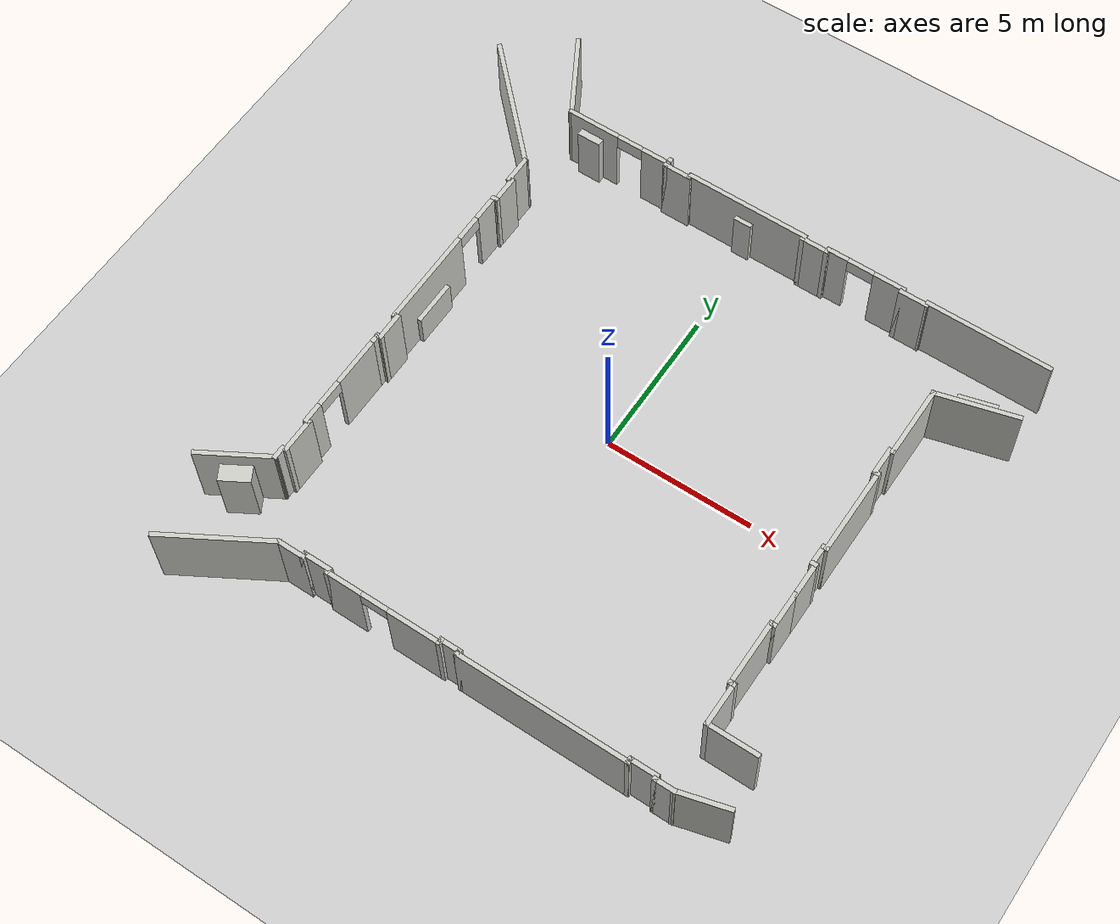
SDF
<sdf version="1.6">
 <world name="default">
  <model name="ground_plane">
   <static>1</static>
   <link name="link">
    <collision name="collision">
     <geometry><plane><normal>0 0 1</normal><size>100 100</size></plane></geometry>
     <surface><friction><ode><mu>100</mu><mu2>50</mu2></ode></friction></surface>
    </collision>
    <visual name="visual">
     <cast_shadows>0</cast_shadows>
     <geometry><plane><normal>0 0 1</normal><size>100 100</size></plane></geometry>
     <material>
      <script><uri>file://media/materials/scripts/gazebo.material</uri><name>Gazebo/Grey</name></script>
     </material>
    </visual>
   </link>
  </model>
  <model name="mcbryde5">
   <pose>0.0004 -0.03414 0 0 -0 0</pose>
   <link name="Wall_102">
    <collision name="Wall_102_Collision">
     <geometry><box><size>0.15 0.15 2.5</size></box></geometry>
     <pose>0 0 1.25 0 -0 0</pose>
    </collision>
    <visual name="Wall_102_Visual">
     <pose>0 0 1.25 0 -0 0</pose>
     <geometry><box><size>0.15 0.15 2.5</size></box></geometry>
     <material>
      <script><uri>file://media/materials/scripts/gazebo.material</uri><name>Gazebo/CeilingTiled</name></script>
      <ambient>1 1 1 1</ambient>
     </material>
    </visual>
    <pose>-6.94903 4.93922 0 0 -0 0</pose>
   </link>
   <link name="Wall_103">
    <collision name="Wall_103_Collision">
     <geometry><box><size>0.25 0.15 2.5</size></box></geometry>
     <pose>0 0 1.25 0 -0 0</pose>
    </collision>
    <visual name="Wall_103_Visual">
     <pose>0 0 1.25 0 -0 0</pose>
     <geometry><box><size>0.25 0.15 2.5</size></box></geometry>
     <material>
      <script><uri>file://media/materials/scripts/gazebo.material</uri><name>Gazebo/CeilingTiled</name></script>
      <ambient>1 1 1 1</ambient>
     </material>
    </visual>
    <pose>-6.89903 4.93922 0 0 -0 0</pose>
   </link>
   <link name="Wall_104">
    <collision name="Wall_104_Collision">
     <geometry><box><size>1 0.15 2.5</size></box></geometry>
     <pose>0 0 1.25 0 -0 0</pose>
    </collision>
    <visual name="Wall_104_Visual">
     <pose>0 0 1.25 0 -0 0</pose>
     <geometry><box><size>1 0.15 2.5</size></box></geometry>
     <material>
      <script><uri>file://media/materials/scripts/gazebo.material</uri><name>Gazebo/CeilingTiled</name></script>
      <ambient>1 1 1 1</ambient>
     </material>
    </visual>
    <pose>-6.84903 4.51422 0 0 0 -1.5708</pose>
   </link>
   <link name="Wall_105">
    <collision name="Wall_105_Collision">
     <geometry><box><size>0.25 0.15 2.5</size></box></geometry>
     <pose>0 0 1.25 0 -0 0</pose>
    </collision>
    <visual name="Wall_105_Visual">
     <pose>0 0 1.25 0 -0 0</pose>
     <geometry><box><size>0.25 0.15 2.5</size></box></geometry>
     <material>
      <script><uri>file://media/materials/scripts/gazebo.material</uri><name>Gazebo/CeilingTiled</name></script>
      <ambient>1 1 1 1</ambient>
     </material>
    </visual>
    <pose>-6.89903 4.08922 0 0 -0 3.14159</pose>
   </link>
   <link name="Wall_106">
    <pose>-6.94903 1.53922 0 0 0 -1.5708</pose>
    <visual name="Wall_106_Visual_0">
     <pose>-2.13764 0 1.25 0 -0 0</pose>
     <geometry><box><size>0.974722 0.15 2.5</size></box></geometry>
     <material>
      <script><uri>file://media/materials/scripts/gazebo.material</uri><name>Gazebo/CeilingTiled</name></script>
      <ambient>1 1 1 1</ambient>
     </material>
    </visual>
    <collision name="Wall_106_Collision_0">
     <geometry><box><size>0.974722 0.15 2.5</size></box></geometry>
     <pose>-2.13764 0 1.25 0 -0 0</pose>
    </collision>
    <visual name="Wall_106_Visual_1">
     <pose>0.937361 0 1.25 0 -0 0</pose>
     <geometry><box><size>3.37528 0.15 2.5</size></box></geometry>
     <material>
      <script><uri>file://media/materials/scripts/gazebo.material</uri><name>Gazebo/CeilingTiled</name></script>
      <ambient>1 1 1 1</ambient>
     </material>
    </visual>
    <collision name="Wall_106_Collision_1">
     <geometry><box><size>3.37528 0.15 2.5</size></box></geometry>
     <pose>0.937361 0 1.25 0 -0 0</pose>
    </collision>
    <visual name="Wall_106_Visual_2">
     <pose>-1.20028 0 2.25 0 -0 0</pose>
     <geometry><box><size>0.9 0.15 0.5</size></box></geometry>
     <material>
      <script><uri>file://media/materials/scripts/gazebo.material</uri><name>Gazebo/CeilingTiled</name></script>
      <ambient>1 1 1 1</ambient>
     </material>
    </visual>
    <collision name="Wall_106_Collision_2">
     <geometry><box><size>0.9 0.15 0.5</size></box></geometry>
     <pose>-1.20028 0 2.25 0 -0 0</pose>
    </collision>
    <visual name="Wall_106_Visual_3">
     <pose>0.937361 0.15 0.6 0 -0 0</pose>
     <geometry><box><size>1.5 0.15 1.2</size></box></geometry>
     <material>
      <script><uri>file://media/materials/scripts/gazebo.material</uri><name>Gazebo/CeilingTiled</name></script>
      <ambient>0.6 0.6 1 1</ambient>
     </material>
    </visual>
    <collision name="Wall_106_Collision_3">
     <geometry><box><size>1.5 0.15 1.2</size></box></geometry>
     <pose>0.937361 0.15 0.6 0 -0 0</pose>
    </collision>
   </link>
   <link name="Wall_107">
    <collision name="Wall_107_Collision">
     <geometry><box><size>0.25 0.15 2.5</size></box></geometry>
     <pose>0 0 1.25 0 -0 0</pose>
    </collision>
    <visual name="Wall_107_Visual">
     <pose>0 0 1.25 0 -0 0</pose>
     <geometry><box><size>0.25 0.15 2.5</size></box></geometry>
     <material>
      <script><uri>file://media/materials/scripts/gazebo.material</uri><name>Gazebo/CeilingTiled</name></script>
      <ambient>1 1 1 1</ambient>
     </material>
    </visual>
    <pose>-6.89903 -1.01078 0 0 -0 0</pose>
   </link>
   <link name="Wall_108">
    <collision name="Wall_108_Collision">
     <geometry><box><size>1 0.15 2.5</size></box></geometry>
     <pose>0 0 1.25 0 -0 0</pose>
    </collision>
    <visual name="Wall_108_Visual">
     <pose>0 0 1.25 0 -0 0</pose>
     <geometry><box><size>1 0.15 2.5</size></box></geometry>
     <material>
      <script><uri>file://media/materials/scripts/gazebo.material</uri><name>Gazebo/CeilingTiled</name></script>
      <ambient>1 1 1 1</ambient>
     </material>
    </visual>
    <pose>-6.84903 -1.43578 0 0 0 -1.5708</pose>
   </link>
   <link name="Wall_109">
    <collision name="Wall_109_Collision">
     <geometry><box><size>0.25 0.15 2.5</size></box></geometry>
     <pose>0 0 1.25 0 -0 0</pose>
    </collision>
    <visual name="Wall_109_Visual">
     <pose>0 0 1.25 0 -0 0</pose>
     <geometry><box><size>0.25 0.15 2.5</size></box></geometry>
     <material>
      <script><uri>file://media/materials/scripts/gazebo.material</uri><name>Gazebo/CeilingTiled</name></script>
      <ambient>1 1 1 1</ambient>
     </material>
    </visual>
    <pose>-6.89903 -1.86078 0 0 -0 3.14159</pose>
   </link>
   <link name="Wall_110">
    <collision name="Wall_110_Collision">
     <geometry><box><size>0.5 0.15 2.5</size></box></geometry>
     <pose>0 0 1.25 0 -0 0</pose>
    </collision>
    <visual name="Wall_110_Visual">
     <pose>0 0 1.25 0 -0 0</pose>
     <geometry><box><size>0.5 0.15 2.5</size></box></geometry>
     <material>
      <script><uri>file://media/materials/scripts/gazebo.material</uri><name>Gazebo/CeilingTiled</name></script>
      <ambient>1 1 1 1</ambient>
     </material>
    </visual>
    <pose>-6.94903 -2.03578 0 0 0 -1.5708</pose>
   </link>
   <link name="Wall_112">
    <pose>-6.94903 -3.76078 0 0 0 -1.5708</pose>
    <visual name="Wall_112_Visual_0">
     <pose>-0.803013 0 1.25 0 -0 0</pose>
     <geometry><box><size>1.64397 0.15 2.5</size></box></geometry>
     <material>
      <script><uri>file://media/materials/scripts/gazebo.material</uri><name>Gazebo/CeilingTiled</name></script>
      <ambient>1 1 1 1</ambient>
     </material>
    </visual>
    <collision name="Wall_112_Collision_0">
     <geometry><box><size>1.64397 0.15 2.5</size></box></geometry>
     <pose>-0.803013 0 1.25 0 -0 0</pose>
    </collision>
    <visual name="Wall_112_Visual_1">
     <pose>1.27199 0 1.25 0 -0 0</pose>
     <geometry><box><size>0.706025 0.15 2.5</size></box></geometry>
     <material>
      <script><uri>file://media/materials/scripts/gazebo.material</uri><name>Gazebo/CeilingTiled</name></script>
      <ambient>1 1 1 1</ambient>
     </material>
    </visual>
    <collision name="Wall_112_Collision_1">
     <geometry><box><size>0.706025 0.15 2.5</size></box></geometry>
     <pose>1.27199 0 1.25 0 -0 0</pose>
    </collision>
    <visual name="Wall_112_Visual_2">
     <pose>0.468975 0 2.25 0 -0 0</pose>
     <geometry><box><size>0.9 0.15 0.5</size></box></geometry>
     <material>
      <script><uri>file://media/materials/scripts/gazebo.material</uri><name>Gazebo/CeilingTiled</name></script>
      <ambient>1 1 1 1</ambient>
     </material>
    </visual>
    <collision name="Wall_112_Collision_2">
     <geometry><box><size>0.9 0.15 0.5</size></box></geometry>
     <pose>0.468975 0 2.25 0 -0 0</pose>
    </collision>
   </link>
   <link name="Wall_113">
    <collision name="Wall_113_Collision">
     <geometry><box><size>0.25 0.15 2.5</size></box></geometry>
     <pose>0 0 1.25 0 -0 0</pose>
    </collision>
    <visual name="Wall_113_Visual">
     <pose>0 0 1.25 0 -0 0</pose>
     <geometry><box><size>0.25 0.15 2.5</size></box></geometry>
     <material>
      <script><uri>file://media/materials/scripts/gazebo.material</uri><name>Gazebo/CeilingTiled</name></script>
      <ambient>1 1 1 1</ambient>
     </material>
    </visual>
    <pose>-6.89903 -5.31078 0 0 -0 0</pose>
   </link>
   <link name="Wall_114">
    <collision name="Wall_114_Collision">
     <geometry><box><size>1.25 0.15 2.5</size></box></geometry>
     <pose>0 0 1.25 0 -0 0</pose>
    </collision>
    <visual name="Wall_114_Visual">
     <pose>0 0 1.25 0 -0 0</pose>
     <geometry><box><size>1.25 0.15 2.5</size></box></geometry>
     <material>
      <script><uri>file://media/materials/scripts/gazebo.material</uri><name>Gazebo/CeilingTiled</name></script>
      <ambient>1 1 1 1</ambient>
     </material>
    </visual>
    <pose>-6.84903 -5.86078 0 0 0 -1.5708</pose>
   </link>
   <link name="Wall_115">
    <collision name="Wall_115_Collision">
     <geometry><box><size>0.25 0.15 2.5</size></box></geometry>
     <pose>0 0 1.25 0 -0 0</pose>
    </collision>
    <visual name="Wall_115_Visual">
     <pose>0 0 1.25 0 -0 0</pose>
     <geometry><box><size>0.25 0.15 2.5</size></box></geometry>
     <material>
      <script><uri>file://media/materials/scripts/gazebo.material</uri><name>Gazebo/CeilingTiled</name></script>
      <ambient>1 1 1 1</ambient>
     </material>
    </visual>
    <pose>-6.89903 -6.41078 0 0 -0 3.14159</pose>
   </link>
   <link name="Wall_116">
    <collision name="Wall_116_Collision">
     <geometry><box><size>0.5 0.15 2.5</size></box></geometry>
     <pose>0 0 1.25 0 -0 0</pose>
    </collision>
    <visual name="Wall_116_Visual">
     <pose>0 0 1.25 0 -0 0</pose>
     <geometry><box><size>0.5 0.15 2.5</size></box></geometry>
     <material>
      <script><uri>file://media/materials/scripts/gazebo.material</uri><name>Gazebo/CeilingTiled</name></script>
      <ambient>1 1 1 1</ambient>
     </material>
    </visual>
    <pose>-6.94903 -6.58578 0 0 0 -1.5708</pose>
   </link>
   <link name="Wall_117">
    <collision name="Wall_117_Collision_0">
     <geometry><box><size>2.5 0.15 2.5</size></box></geometry>
     <pose>0 0 1.25 0 -0 0</pose>
    </collision>
    <visual name="Wall_117_Visual_0">
     <pose>0 0 1.25 0 -0 0</pose>
     <geometry><box><size>2.5 0.15 2.5</size></box></geometry>
     <material>
      <script><uri>file://media/materials/scripts/gazebo.material</uri><name>Gazebo/CeilingTiled</name></script>
      <ambient>1 1 1 1</ambient>
     </material>
    </visual>
    <collision name="Wall_117_Collision_1">
     <geometry><box><size>1 0.55 2</size></box></geometry>
     <pose>0 0.35 1 0 -0 0</pose>
    </collision>
    <visual name="Wall_117_Visual_1">
     <pose>0 0.35 1 0 -0 0</pose>
     <geometry><box><size>1 0.55 2</size></box></geometry>
     <material>
      <script><uri>file://media/materials/scripts/gazebo.material</uri><name>Gazebo/CeilingTiled</name></script>
      <ambient>0.3 1 0.3 1</ambient>
     </material>
    </visual>
    <pose>-7.96661 -7.34828 0 0 0 -2.61799</pose>
   </link>
   <link name="Wall_119">
    <collision name="Wall_119_Collision">
     <geometry><box><size>3.75 0.15 2.5</size></box></geometry>
     <pose>0 0 1.25 0 -0 0</pose>
    </collision>
    <visual name="Wall_119_Visual">
     <pose>0 0 1.25 0 -0 0</pose>
     <geometry><box><size>3.75 0.15 2.5</size></box></geometry>
     <material>
      <script><uri>file://media/materials/scripts/gazebo.material</uri><name>Gazebo/CeilingTiled</name></script>
      <ambient>1 1 1 1</ambient>
     </material>
    </visual>
    <pose>-6.76357 -9.73795 0 0 -0 0.523599</pose>
   </link>
   <link name="Wall_120">
    <collision name="Wall_120_Collision">
     <geometry><box><size>1 0.15 2.5</size></box></geometry>
     <pose>0 0 1.25 0 -0 0</pose>
    </collision>
    <visual name="Wall_120_Visual">
     <pose>0 0 1.25 0 -0 0</pose>
     <geometry><box><size>1 0.15 2.5</size></box></geometry>
     <material>
      <script><uri>file://media/materials/scripts/gazebo.material</uri><name>Gazebo/CeilingTiled</name></script>
      <ambient>1 1 1 1</ambient>
     </material>
    </visual>
    <pose>-4.77972 -8.83795 0 0 -0 0</pose>
   </link>
   <link name="Wall_121">
    <collision name="Wall_121_Collision">
     <geometry><box><size>0.25 0.15 2.5</size></box></geometry>
     <pose>0 0 1.25 0 -0 0</pose>
    </collision>
    <visual name="Wall_121_Visual">
     <pose>0 0 1.25 0 -0 0</pose>
     <geometry><box><size>0.25 0.15 2.5</size></box></geometry>
     <material>
      <script><uri>file://media/materials/scripts/gazebo.material</uri><name>Gazebo/CeilingTiled</name></script>
      <ambient>1 1 1 1</ambient>
     </material>
    </visual>
    <pose>-4.35472 -8.78795 0 0 -0 1.5708</pose>
   </link>
   <link name="Wall_122">
    <collision name="Wall_122_Collision">
     <geometry><box><size>1 0.15 2.5</size></box></geometry>
     <pose>0 0 1.25 0 -0 0</pose>
    </collision>
    <visual name="Wall_122_Visual">
     <pose>0 0 1.25 0 -0 0</pose>
     <geometry><box><size>1 0.15 2.5</size></box></geometry>
     <material>
      <script><uri>file://media/materials/scripts/gazebo.material</uri><name>Gazebo/CeilingTiled</name></script>
      <ambient>1 1 1 1</ambient>
     </material>
    </visual>
    <pose>-3.92972 -8.73795 0 0 -0 0</pose>
   </link>
   <link name="Wall_123">
    <collision name="Wall_123_Collision">
     <geometry><box><size>0.25 0.15 2.5</size></box></geometry>
     <pose>0 0 1.25 0 -0 0</pose>
    </collision>
    <visual name="Wall_123_Visual">
     <pose>0 0 1.25 0 -0 0</pose>
     <geometry><box><size>0.25 0.15 2.5</size></box></geometry>
     <material>
      <script><uri>file://media/materials/scripts/gazebo.material</uri><name>Gazebo/CeilingTiled</name></script>
      <ambient>1 1 1 1</ambient>
     </material>
    </visual>
    <pose>-3.50472 -8.78795 0 0 0 -1.5708</pose>
   </link>
   <link name="Wall_124">
    <pose>-1.57972 -8.83795 0 0 -0 0</pose>
    <visual name="Wall_124_Visual_0">
     <pose>-1.36383 0 1.25 0 -0 0</pose>
     <geometry><box><size>1.27234 0.15 2.5</size></box></geometry>
     <material>
      <script><uri>file://media/materials/scripts/gazebo.material</uri><name>Gazebo/CeilingTiled</name></script>
      <ambient>1 1 1 1</ambient>
     </material>
    </visual>
    <collision name="Wall_124_Collision_0">
     <geometry><box><size>1.27234 0.15 2.5</size></box></geometry>
     <pose>-1.36383 0 1.25 0 -0 0</pose>
    </collision>
    <visual name="Wall_124_Visual_1">
     <pose>1.08617 0 1.25 0 -0 0</pose>
     <geometry><box><size>1.82766 0.15 2.5</size></box></geometry>
     <material>
      <script><uri>file://media/materials/scripts/gazebo.material</uri><name>Gazebo/CeilingTiled</name></script>
      <ambient>1 1 1 1</ambient>
     </material>
    </visual>
    <collision name="Wall_124_Collision_1">
     <geometry><box><size>1.82766 0.15 2.5</size></box></geometry>
     <pose>1.08617 0 1.25 0 -0 0</pose>
    </collision>
    <visual name="Wall_124_Visual_2">
     <pose>-0.277656 0 2.25 0 -0 0</pose>
     <geometry><box><size>0.9 0.15 0.5</size></box></geometry>
     <material>
      <script><uri>file://media/materials/scripts/gazebo.material</uri><name>Gazebo/CeilingTiled</name></script>
      <ambient>1 1 1 1</ambient>
     </material>
    </visual>
    <collision name="Wall_124_Collision_2">
     <geometry><box><size>0.9 0.15 0.5</size></box></geometry>
     <pose>-0.277656 0 2.25 0 -0 0</pose>
    </collision>
   </link>
   <link name="Wall_125">
    <collision name="Wall_125_Collision">
     <geometry><box><size>0.25 0.15 2.5</size></box></geometry>
     <pose>0 0 1.25 0 -0 0</pose>
    </collision>
    <visual name="Wall_125_Visual">
     <pose>0 0 1.25 0 -0 0</pose>
     <geometry><box><size>0.25 0.15 2.5</size></box></geometry>
     <material>
      <script><uri>file://media/materials/scripts/gazebo.material</uri><name>Gazebo/CeilingTiled</name></script>
      <ambient>1 1 1 1</ambient>
     </material>
    </visual>
    <pose>0.345276 -8.78795 0 0 -0 1.5708</pose>
   </link>
   <link name="Wall_126">
    <collision name="Wall_126_Collision">
     <geometry><box><size>0.75 0.15 2.5</size></box></geometry>
     <pose>0 0 1.25 0 -0 0</pose>
    </collision>
    <visual name="Wall_126_Visual">
     <pose>0 0 1.25 0 -0 0</pose>
     <geometry><box><size>0.75 0.15 2.5</size></box></geometry>
     <material>
      <script><uri>file://media/materials/scripts/gazebo.material</uri><name>Gazebo/CeilingTiled</name></script>
      <ambient>1 1 1 1</ambient>
     </material>
    </visual>
    <pose>0.645276 -8.73795 0 0 -0 0</pose>
   </link>
   <link name="Wall_127">
    <collision name="Wall_127_Collision">
     <geometry><box><size>0.25 0.15 2.5</size></box></geometry>
     <pose>0 0 1.25 0 -0 0</pose>
    </collision>
    <visual name="Wall_127_Visual">
     <pose>0 0 1.25 0 -0 0</pose>
     <geometry><box><size>0.25 0.15 2.5</size></box></geometry>
     <material>
      <script><uri>file://media/materials/scripts/gazebo.material</uri><name>Gazebo/CeilingTiled</name></script>
      <ambient>1 1 1 1</ambient>
     </material>
    </visual>
    <pose>0.945276 -8.78795 0 0 0 -1.5708</pose>
   </link>
   <link name="Wall_128">
    <collision name="Wall_128_Collision_0">
     <geometry><box><size>5.75 0.15 2.5</size></box></geometry>
     <pose>0 0 1.25 0 -0 0</pose>
    </collision>
    <visual name="Wall_128_Visual_0">
     <pose>0 0 1.25 0 -0 0</pose>
     <geometry><box><size>5.75 0.15 2.5</size></box></geometry>
     <material>
      <script><uri>file://media/materials/scripts/gazebo.material</uri><name>Gazebo/CeilingTiled</name></script>
      <ambient>1 1 1 1</ambient>
     </material>
    </visual>
    <collision name="Wall_128_Collision_1">
     <geometry><box><size>1.2 0.35 1</size></box></geometry>
     <pose>0 0.25 0.5 0 -0 0</pose>
    </collision>
    <visual name="Wall_128_Visual_1">
     <pose>0 0.25 0.5 0 -0 0</pose>
     <geometry><box><size>1.2 0.35 1</size></box></geometry>
     <material>
      <script><uri>file://media/materials/scripts/gazebo.material</uri><name>Gazebo/CeilingTiled</name></script>
      <ambient>0.4 0.4 1 1</ambient>
     </material>
    </visual>
    <pose>3.74528 -8.83795 0 0 -0 0</pose>
   </link>
   <link name="Wall_129">
    <collision name="Wall_129_Collision">
     <geometry><box><size>0.25 0.15 2.5</size></box></geometry>
     <pose>0 0 1.25 0 -0 0</pose>
    </collision>
    <visual name="Wall_129_Visual">
     <pose>0 0 1.25 0 -0 0</pose>
     <geometry><box><size>0.25 0.15 2.5</size></box></geometry>
     <material>
      <script><uri>file://media/materials/scripts/gazebo.material</uri><name>Gazebo/CeilingTiled</name></script>
      <ambient>1 1 1 1</ambient>
     </material>
    </visual>
    <pose>6.54528 -8.78795 0 0 -0 1.5708</pose>
   </link>
   <link name="Wall_130">
    <collision name="Wall_130_Collision">
     <geometry><box><size>1 0.15 2.5</size></box></geometry>
     <pose>0 0 1.25 0 -0 0</pose>
    </collision>
    <visual name="Wall_130_Visual">
     <pose>0 0 1.25 0 -0 0</pose>
     <geometry><box><size>1 0.15 2.5</size></box></geometry>
     <material>
      <script><uri>file://media/materials/scripts/gazebo.material</uri><name>Gazebo/CeilingTiled</name></script>
      <ambient>1 1 1 1</ambient>
     </material>
    </visual>
    <pose>6.97028 -8.73795 0 0 -0 0</pose>
   </link>
   <link name="Wall_131">
    <collision name="Wall_131_Collision">
     <geometry><box><size>0.25 0.15 2.5</size></box></geometry>
     <pose>0 0 1.25 0 -0 0</pose>
    </collision>
    <visual name="Wall_131_Visual">
     <pose>0 0 1.25 0 -0 0</pose>
     <geometry><box><size>0.25 0.15 2.5</size></box></geometry>
     <material>
      <script><uri>file://media/materials/scripts/gazebo.material</uri><name>Gazebo/CeilingTiled</name></script>
      <ambient>1 1 1 1</ambient>
     </material>
    </visual>
    <pose>7.39528 -8.78795 0 0 0 -1.5708</pose>
   </link>
   <link name="Wall_132">
    <collision name="Wall_132_Collision">
     <geometry><box><size>0.75 0.15 2.5</size></box></geometry>
     <pose>0 0 1.25 0 -0 0</pose>
    </collision>
    <visual name="Wall_132_Visual">
     <pose>0 0 1.25 0 -0 0</pose>
     <geometry><box><size>0.75 0.15 2.5</size></box></geometry>
     <material>
      <script><uri>file://media/materials/scripts/gazebo.material</uri><name>Gazebo/CeilingTiled</name></script>
      <ambient>1 1 1 1</ambient>
     </material>
    </visual>
    <pose>7.69528 -8.83795 0 0 -0 0</pose>
   </link>
   <link name="Wall_133">
    <collision name="Wall_133_Collision">
     <geometry><box><size>1.75 0.15 2.5</size></box></geometry>
     <pose>0 0 1.25 0 -0 0</pose>
    </collision>
    <visual name="Wall_133_Visual">
     <pose>0 0 1.25 0 -0 0</pose>
     <geometry><box><size>1.75 0.15 2.5</size></box></geometry>
     <material>
      <script><uri>file://media/materials/scripts/gazebo.material</uri><name>Gazebo/CeilingTiled</name></script>
      <ambient>1 1 1 1</ambient>
     </material>
    </visual>
    <pose>8.76802 -8.6309 0 0 -0 0.261799</pose>
   </link>
   <link name="Wall_136">
    <collision name="Wall_136_Collision">
     <geometry><box><size>1.75 0.15 2.5</size></box></geometry>
     <pose>0 0 1.25 0 -0 0</pose>
    </collision>
    <visual name="Wall_136_Visual">
     <pose>0 0 1.25 0 -0 0</pose>
     <geometry><box><size>1.75 0.15 2.5</size></box></geometry>
     <material>
      <script><uri>file://media/materials/scripts/gazebo.material</uri><name>Gazebo/CeilingTiled</name></script>
      <ambient>1 1 1 1</ambient>
     </material>
    </visual>
    <pose>8.50453 -6.75972 0 0 -0 3.14159</pose>
   </link>
   <link name="Wall_137">
    <collision name="Wall_137_Collision_0">
     <geometry><box><size>1.5 0.15 2.5</size></box></geometry>
     <pose>0 0 1.25 0 -0 0</pose>
    </collision>
    <visual name="Wall_137_Visual_0">
     <pose>0 0 1.25 0 -0 0</pose>
     <geometry><box><size>1.5 0.15 2.5</size></box></geometry>
     <material>
      <script><uri>file://media/materials/scripts/gazebo.material</uri><name>Gazebo/CeilingTiled</name></script>
      <ambient>1 1 1 1</ambient>
     </material>
    </visual>
    <collision name="Wall_137_Collision_1">
     <geometry><box><size>0.8 0.15 1.5</size></box></geometry>
     <pose>0 0.15 0.75 0 -0 0</pose>
    </collision>
    <visual name="Wall_137_Visual_1">
     <pose>0 0.15 0.75 0 -0 0</pose>
     <geometry><box><size>0.8 0.15 1.5</size></box></geometry>
     <material>
      <script><uri>file://media/materials/scripts/gazebo.material</uri><name>Gazebo/CeilingTiled</name></script>
      <ambient>1 0.6 1 1</ambient>
     </material>
    </visual>
    <pose>7.70453 -6.08472 0 0 -0 1.5708</pose>
   </link>
   <link name="Wall_138">
    <collision name="Wall_138_Collision">
     <geometry><box><size>0.25 0.15 2.5</size></box></geometry>
     <pose>0 0 1.25 0 -0 0</pose>
    </collision>
    <visual name="Wall_138_Visual">
     <pose>0 0 1.25 0 -0 0</pose>
     <geometry><box><size>0.25 0.15 2.5</size></box></geometry>
     <material>
      <script><uri>file://media/materials/scripts/gazebo.material</uri><name>Gazebo/CeilingTiled</name></script>
      <ambient>1 1 1 1</ambient>
     </material>
    </visual>
    <pose>7.65453 -5.40972 0 0 -0 3.14159</pose>
   </link>
   <link name="Wall_139">
    <collision name="Wall_139_Collision">
     <geometry><box><size>2.25 0.15 2.5</size></box></geometry>
     <pose>0 0 1.25 0 -0 0</pose>
    </collision>
    <visual name="Wall_139_Visual">
     <pose>0 0 1.25 0 -0 0</pose>
     <geometry><box><size>2.25 0.15 2.5</size></box></geometry>
     <material>
      <script><uri>file://media/materials/scripts/gazebo.material</uri><name>Gazebo/CeilingTiled</name></script>
      <ambient>1 1 1 1</ambient>
     </material>
    </visual>
    <pose>7.60453 -4.35972 0 0 -0 1.5708</pose>
   </link>
   <link name="Wall_14">
    <collision name="Wall_14_Collision">
     <geometry><box><size>0.15 0.15 2.5</size></box></geometry>
     <pose>0 0 1.25 0 -0 0</pose>
    </collision>
    <visual name="Wall_14_Visual">
     <pose>0 0 1.25 0 -0 0</pose>
     <geometry><box><size>0.15 0.15 2.5</size></box></geometry>
     <material>
      <script><uri>file://media/materials/scripts/gazebo.material</uri><name>Gazebo/CeilingTiled</name></script>
      <ambient>1 1 1 1</ambient>
     </material>
    </visual>
    <pose>-3.20531 8.30498 0 0 -0 0</pose>
   </link>
   <link name="Wall_140">
    <collision name="Wall_140_Collision">
     <geometry><box><size>0.25 0.15 2.5</size></box></geometry>
     <pose>0 0 1.25 0 -0 0</pose>
    </collision>
    <visual name="Wall_140_Visual">
     <pose>0 0 1.25 0 -0 0</pose>
     <geometry><box><size>0.25 0.15 2.5</size></box></geometry>
     <material>
      <script><uri>file://media/materials/scripts/gazebo.material</uri><name>Gazebo/CeilingTiled</name></script>
      <ambient>1 1 1 1</ambient>
     </material>
    </visual>
    <pose>7.65453 -3.30972 0 0 -0 0</pose>
   </link>
   <link name="Wall_141">
    <collision name="Wall_141_Collision">
     <geometry><box><size>1.25 0.15 2.5</size></box></geometry>
     <pose>0 0 1.25 0 -0 0</pose>
    </collision>
    <visual name="Wall_141_Visual">
     <pose>0 0 1.25 0 -0 0</pose>
     <geometry><box><size>1.25 0.15 2.5</size></box></geometry>
     <material>
      <script><uri>file://media/materials/scripts/gazebo.material</uri><name>Gazebo/CeilingTiled</name></script>
      <ambient>1 1 1 1</ambient>
     </material>
    </visual>
    <pose>7.70453 -2.75972 0 0 -0 1.5708</pose>
   </link>
   <link name="Wall_143">
    <collision name="Wall_143_Collision">
     <geometry><box><size>1.25 0.15 2.5</size></box></geometry>
     <pose>0 0 1.25 0 -0 0</pose>
    </collision>
    <visual name="Wall_143_Visual">
     <pose>0 0 1.25 0 -0 0</pose>
     <geometry><box><size>1.25 0.15 2.5</size></box></geometry>
     <material>
      <script><uri>file://media/materials/scripts/gazebo.material</uri><name>Gazebo/CeilingTiled</name></script>
      <ambient>1 1 1 1</ambient>
     </material>
    </visual>
    <pose>7.70453 -1.65972 0 0 -0 1.5708</pose>
   </link>
   <link name="Wall_144">
    <collision name="Wall_144_Collision">
     <geometry><box><size>0.25 0.15 2.5</size></box></geometry>
     <pose>0 0 1.25 0 -0 0</pose>
    </collision>
    <visual name="Wall_144_Visual">
     <pose>0 0 1.25 0 -0 0</pose>
     <geometry><box><size>0.25 0.15 2.5</size></box></geometry>
     <material>
      <script><uri>file://media/materials/scripts/gazebo.material</uri><name>Gazebo/CeilingTiled</name></script>
      <ambient>1 1 1 1</ambient>
     </material>
    </visual>
    <pose>7.65453 -1.10972 0 0 -0 3.14159</pose>
   </link>
   <link name="Wall_145">
    <collision name="Wall_145_Collision">
     <geometry><box><size>0.75 0.15 2.5</size></box></geometry>
     <pose>0 0 1.25 0 -0 0</pose>
    </collision>
    <visual name="Wall_145_Visual">
     <pose>0 0 1.25 0 -0 0</pose>
     <geometry><box><size>0.75 0.15 2.5</size></box></geometry>
     <material>
      <script><uri>file://media/materials/scripts/gazebo.material</uri><name>Gazebo/CeilingTiled</name></script>
      <ambient>1 1 1 1</ambient>
     </material>
    </visual>
    <pose>7.60453 -0.809722 0 0 -0 1.5708</pose>
   </link>
   <link name="Wall_146">
    <collision name="Wall_146_Collision">
     <geometry><box><size>0.25 0.15 2.5</size></box></geometry>
     <pose>0 0 1.25 0 -0 0</pose>
    </collision>
    <visual name="Wall_146_Visual">
     <pose>0 0 1.25 0 -0 0</pose>
     <geometry><box><size>0.25 0.15 2.5</size></box></geometry>
     <material>
      <script><uri>file://media/materials/scripts/gazebo.material</uri><name>Gazebo/CeilingTiled</name></script>
      <ambient>1 1 1 1</ambient>
     </material>
    </visual>
    <pose>7.65453 -0.509722 0 0 -0 0</pose>
   </link>
   <link name="Wall_147">
    <collision name="Wall_147_Collision">
     <geometry><box><size>3 0.15 2.5</size></box></geometry>
     <pose>0 0 1.25 0 -0 0</pose>
    </collision>
    <visual name="Wall_147_Visual">
     <pose>0 0 1.25 0 -0 0</pose>
     <geometry><box><size>3 0.15 2.5</size></box></geometry>
     <material>
      <script><uri>file://media/materials/scripts/gazebo.material</uri><name>Gazebo/CeilingTiled</name></script>
      <ambient>1 1 1 1</ambient>
     </material>
    </visual>
    <pose>7.70453 0.915278 0 0 -0 1.5708</pose>
   </link>
   <link name="Wall_149">
    <collision name="Wall_149_Collision">
     <geometry><box><size>0.25 0.15 2.5</size></box></geometry>
     <pose>0 0 1.25 0 -0 0</pose>
    </collision>
    <visual name="Wall_149_Visual">
     <pose>0 0 1.25 0 -0 0</pose>
     <geometry><box><size>0.25 0.15 2.5</size></box></geometry>
     <material>
      <script><uri>file://media/materials/scripts/gazebo.material</uri><name>Gazebo/CeilingTiled</name></script>
      <ambient>1 1 1 1</ambient>
     </material>
    </visual>
    <pose>7.65453 2.34028 0 0 -0 3.14159</pose>
   </link>
   <link name="Wall_150">
    <collision name="Wall_150_Collision">
     <geometry><box><size>1 0.15 2.5</size></box></geometry>
     <pose>0 0 1.25 0 -0 0</pose>
    </collision>
    <visual name="Wall_150_Visual">
     <pose>0 0 1.25 0 -0 0</pose>
     <geometry><box><size>1 0.15 2.5</size></box></geometry>
     <material>
      <script><uri>file://media/materials/scripts/gazebo.material</uri><name>Gazebo/CeilingTiled</name></script>
      <ambient>1 1 1 1</ambient>
     </material>
    </visual>
    <pose>7.60453 2.76528 0 0 -0 1.5708</pose>
   </link>
   <link name="Wall_151">
    <collision name="Wall_151_Collision">
     <geometry><box><size>0.25 0.15 2.5</size></box></geometry>
     <pose>0 0 1.25 0 -0 0</pose>
    </collision>
    <visual name="Wall_151_Visual">
     <pose>0 0 1.25 0 -0 0</pose>
     <geometry><box><size>0.25 0.15 2.5</size></box></geometry>
     <material>
      <script><uri>file://media/materials/scripts/gazebo.material</uri><name>Gazebo/CeilingTiled</name></script>
      <ambient>1 1 1 1</ambient>
     </material>
    </visual>
    <pose>7.65453 3.19028 0 0 -0 0</pose>
   </link>
   <link name="Wall_152">
    <collision name="Wall_152_Collision">
     <geometry><box><size>2.5 0.15 2.5</size></box></geometry>
     <pose>0 0 1.25 0 -0 0</pose>
    </collision>
    <visual name="Wall_152_Visual">
     <pose>0 0 1.25 0 -0 0</pose>
     <geometry><box><size>2.5 0.15 2.5</size></box></geometry>
     <material>
      <script><uri>file://media/materials/scripts/gazebo.material</uri><name>Gazebo/CeilingTiled</name></script>
      <ambient>1 1 1 1</ambient>
     </material>
    </visual>
    <pose>7.70453 4.36528 0 0 -0 1.5708</pose>
   </link>
   <link name="Wall_153">
    <collision name="Wall_153_Collision_0">
     <geometry><box><size>2.75 0.15 2.5</size></box></geometry>
     <pose>0 0 1.25 0 -0 0</pose>
    </collision>
    <visual name="Wall_153_Visual_0">
     <pose>0 0 1.25 0 -0 0</pose>
     <geometry><box><size>2.75 0.15 2.5</size></box></geometry>
     <material>
      <script><uri>file://media/materials/scripts/gazebo.material</uri><name>Gazebo/CeilingTiled</name></script>
      <ambient>1 1 1 1</ambient>
     </material>
    </visual>
    <collision name="Wall_153_Collision_1">
     <geometry><box><size>1.25 0.55 1.8</size></box></geometry>
     <pose>0 0.35 0.9 0 -0 0</pose>
    </collision>
    <visual name="Wall_153_Visual_1">
     <pose>0 0.35 0.9 0 -0 0</pose>
     <geometry><box><size>1.25 0.55 1.8</size></box></geometry>
     <material>
      <script><uri>file://media/materials/scripts/gazebo.material</uri><name>Gazebo/CeilingTiled</name></script>
      <ambient>1 0.4 0.4 1</ambient>
     </material>
    </visual>
    <pose>8.96023 5.87674 0 0 -0 0.261799</pose>
   </link>
   <link name="Wall_19">
    <collision name="Wall_19_Collision">
     <geometry><box><size>3 0.15 2.5</size></box></geometry>
     <pose>0 0 1.25 0 -0 0</pose>
    </collision>
    <visual name="Wall_19_Visual">
     <pose>0 0 1.25 0 -0 0</pose>
     <geometry><box><size>3 0.15 2.5</size></box></geometry>
     <material>
      <script><uri>file://media/materials/scripts/gazebo.material</uri><name>Gazebo/CeilingTiled</name></script>
      <ambient>1 1 1 1</ambient>
     </material>
    </visual>
    <pose>-7.52502 9.40387 0 0 0 -1.0472</pose>
   </link>
   <link name="Wall_20">
    <pose>-5.01252 8.16978 0 0 -0 0</pose>
    <visual name="Wall_20_Visual_0">
     <pose>-0.956139 0 1.25 0 -0 0</pose>
     <geometry><box><size>1.83772 0.15 2.5</size></box></geometry>
     <material>
      <script><uri>file://media/materials/scripts/gazebo.material</uri><name>Gazebo/CeilingTiled</name></script>
      <ambient>1 1 1 1</ambient>
     </material>
    </visual>
    <collision name="Wall_20_Collision_0">
     <geometry><box><size>1.83772 0.15 2.5</size></box></geometry>
     <pose>-0.956139 0 1.25 0 -0 0</pose>
    </collision>
    <visual name="Wall_20_Visual_1">
     <pose>1.36886 0 1.25 0 -0 0</pose>
     <geometry><box><size>1.01228 0.15 2.5</size></box></geometry>
     <material>
      <script><uri>file://media/materials/scripts/gazebo.material</uri><name>Gazebo/CeilingTiled</name></script>
      <ambient>1 1 1 1</ambient>
     </material>
    </visual>
    <collision name="Wall_20_Collision_1">
     <geometry><box><size>1.01228 0.15 2.5</size></box></geometry>
     <pose>1.36886 0 1.25 0 -0 0</pose>
    </collision>
    <visual name="Wall_20_Visual_2">
     <pose>0.412722 0 2.25 0 -0 0</pose>
     <geometry><box><size>0.9 0.15 0.5</size></box></geometry>
     <material>
      <script><uri>file://media/materials/scripts/gazebo.material</uri><name>Gazebo/CeilingTiled</name></script>
      <ambient>1 1 1 1</ambient>
     </material>
    </visual>
    <collision name="Wall_20_Collision_2">
     <geometry><box><size>0.9 0.15 0.5</size></box></geometry>
     <pose>0.412722 0 2.25 0 -0 0</pose>
    </collision>
    <visual name="Wall_20_Visual_3">
     <pose>-0.956139 -0.2 1 0 -0 0</pose>
     <geometry><box><size>0.8 0.25 2</size></box></geometry>
     <material>
      <script><uri>file://media/materials/scripts/gazebo.material</uri><name>Gazebo/CeilingTiled</name></script>
      <ambient>1 1 0.2 1</ambient>
     </material>
    </visual>
    <collision name="Wall_20_Collision_3">
     <geometry><box><size>0.8 0.25 2</size></box></geometry>
     <pose>-0.956139 -0.2 1 0 -0 0</pose>
    </collision>
   </link>
   <link name="Wall_21">
    <collision name="Wall_21_Collision">
     <geometry><box><size>0.25 0.15 2.5</size></box></geometry>
     <pose>0 0 1.25 0 -0 0</pose>
    </collision>
    <visual name="Wall_21_Visual">
     <pose>0 0 1.25 0 -0 0</pose>
     <geometry><box><size>0.25 0.15 2.5</size></box></geometry>
     <material>
      <script><uri>file://media/materials/scripts/gazebo.material</uri><name>Gazebo/CeilingTiled</name></script>
      <ambient>1 1 1 1</ambient>
     </material>
    </visual>
    <pose>-3.21252 8.11978 0 0 0 -1.5708</pose>
   </link>
   <link name="Wall_22">
    <collision name="Wall_22_Collision">
     <geometry><box><size>1 0.15 2.5</size></box></geometry>
     <pose>0 0 1.25 0 -0 0</pose>
    </collision>
    <visual name="Wall_22_Visual">
     <pose>0 0 1.25 0 -0 0</pose>
     <geometry><box><size>1 0.15 2.5</size></box></geometry>
     <material>
      <script><uri>file://media/materials/scripts/gazebo.material</uri><name>Gazebo/CeilingTiled</name></script>
      <ambient>1 1 1 1</ambient>
     </material>
    </visual>
    <pose>-2.78752 8.06978 0 0 -0 0</pose>
   </link>
   <link name="Wall_23">
    <collision name="Wall_23_Collision">
     <geometry><box><size>0.25 0.15 2.5</size></box></geometry>
     <pose>0 0 1.25 0 -0 0</pose>
    </collision>
    <visual name="Wall_23_Visual">
     <pose>0 0 1.25 0 -0 0</pose>
     <geometry><box><size>0.25 0.15 2.5</size></box></geometry>
     <material>
      <script><uri>file://media/materials/scripts/gazebo.material</uri><name>Gazebo/CeilingTiled</name></script>
      <ambient>1 1 1 1</ambient>
     </material>
    </visual>
    <pose>-2.36252 8.11978 0 0 -0 1.5708</pose>
   </link>
   <link name="Wall_24">
    <collision name="Wall_24_Collision_0">
     <geometry><box><size>4.25 0.15 2.5</size></box></geometry>
     <pose>0 0 1.25 0 -0 0</pose>
    </collision>
    <visual name="Wall_24_Visual_0">
     <pose>0 0 1.25 0 -0 0</pose>
     <geometry><box><size>4.25 0.15 2.5</size></box></geometry>
     <material>
      <script><uri>file://media/materials/scripts/gazebo.material</uri><name>Gazebo/CeilingTiled</name></script>
      <ambient>1 1 1 1</ambient>
     </material>
    </visual>
    <collision name="Wall_24_Collision_1">
     <geometry><box><size>0.6 0.15 1.8</size></box></geometry>
     <pose>0 -0.15 0.9 0 -0 0</pose>
    </collision>
    <visual name="Wall_24_Visual_1">
     <pose>0 -0.15 0.9 0 -0 0</pose>
     <geometry><box><size>0.6 0.15 1.8</size></box></geometry>
     <material>
      <script><uri>file://media/materials/scripts/gazebo.material</uri><name>Gazebo/CeilingTiled</name></script>
      <ambient>0.5 1 0.8 1</ambient>
     </material>
    </visual>
    <pose>-0.312519 8.16978 0 0 -0 0</pose>
   </link>
   <link name="Wall_25">
    <collision name="Wall_25_Collision">
     <geometry><box><size>0.25 0.15 2.5</size></box></geometry>
     <pose>0 0 1.25 0 -0 0</pose>
    </collision>
    <visual name="Wall_25_Visual">
     <pose>0 0 1.25 0 -0 0</pose>
     <geometry><box><size>0.25 0.15 2.5</size></box></geometry>
     <material>
      <script><uri>file://media/materials/scripts/gazebo.material</uri><name>Gazebo/CeilingTiled</name></script>
      <ambient>1 1 1 1</ambient>
     </material>
    </visual>
    <pose>1.73748 8.11978 0 0 0 -1.5708</pose>
   </link>
   <link name="Wall_26">
    <collision name="Wall_26_Collision_0">
     <geometry><box><size>1 0.15 2.5</size></box></geometry>
     <pose>0 0 1.25 0 -0 0</pose>
    </collision>
    <visual name="Wall_26_Visual_0">
     <pose>0 0 1.25 0 -0 0</pose>
     <geometry><box><size>1 0.15 2.5</size></box></geometry>
     <material>
      <script><uri>file://media/materials/scripts/gazebo.material</uri><name>Gazebo/CeilingTiled</name></script>
      <ambient>1 1 1 1</ambient>
     </material>
    </visual>
    <pose>2.16248 8.06978 0 0 -0 0</pose>
   </link>
   <link name="Wall_27">
    <collision name="Wall_27_Collision">
     <geometry><box><size>0.25 0.15 2.5</size></box></geometry>
     <pose>0 0 1.25 0 -0 0</pose>
    </collision>
    <visual name="Wall_27_Visual">
     <pose>0 0 1.25 0 -0 0</pose>
     <geometry><box><size>0.25 0.15 2.5</size></box></geometry>
     <material>
      <script><uri>file://media/materials/scripts/gazebo.material</uri><name>Gazebo/CeilingTiled</name></script>
      <ambient>1 1 1 1</ambient>
     </material>
    </visual>
    <pose>2.58748 8.11978 0 0 -0 1.5708</pose>
   </link>
   <link name="Wall_28">
    <pose>3.88748 8.16978 0 0 -0 0</pose>
    <visual name="Wall_28_Visual_0">
     <pose>-0.988297 0 1.25 0 -0 0</pose>
     <geometry><box><size>0.773405 0.15 2.5</size></box></geometry>
     <material>
      <script><uri>file://media/materials/scripts/gazebo.material</uri><name>Gazebo/CeilingTiled</name></script>
      <ambient>1 1 1 1</ambient>
     </material>
    </visual>
    <collision name="Wall_28_Collision_0">
     <geometry><box><size>0.773405 0.15 2.5</size></box></geometry>
     <pose>-0.988297 0 1.25 0 -0 0</pose>
    </collision>
    <visual name="Wall_28_Visual_1">
     <pose>0.836703 0 1.25 0 -0 0</pose>
     <geometry><box><size>1.07659 0.15 2.5</size></box></geometry>
     <material>
      <script><uri>file://media/materials/scripts/gazebo.material</uri><name>Gazebo/CeilingTiled</name></script>
      <ambient>1 1 1 1</ambient>
     </material>
    </visual>
    <collision name="Wall_28_Collision_1">
     <geometry><box><size>1.07659 0.15 2.5</size></box></geometry>
     <pose>0.836703 0 1.25 0 -0 0</pose>
    </collision>
    <visual name="Wall_28_Visual_2">
     <pose>-0.151595 0 2.25 0 -0 0</pose>
     <geometry><box><size>0.9 0.15 0.5</size></box></geometry>
     <material>
      <script><uri>file://media/materials/scripts/gazebo.material</uri><name>Gazebo/CeilingTiled</name></script>
      <ambient>1 1 1 1</ambient>
     </material>
    </visual>
    <collision name="Wall_28_Collision_2">
     <geometry><box><size>0.9 0.15 0.5</size></box></geometry>
     <pose>-0.151595 0 2.25 0 -0 0</pose>
    </collision>
   </link>
   <link name="Wall_29">
    <collision name="Wall_29_Collision">
     <geometry><box><size>0.25 0.15 2.5</size></box></geometry>
     <pose>0 0 1.25 0 -0 0</pose>
    </collision>
    <visual name="Wall_29_Visual">
     <pose>0 0 1.25 0 -0 0</pose>
     <geometry><box><size>0.25 0.15 2.5</size></box></geometry>
     <material>
      <script><uri>file://media/materials/scripts/gazebo.material</uri><name>Gazebo/CeilingTiled</name></script>
      <ambient>1 1 1 1</ambient>
     </material>
    </visual>
    <pose>5.18748 8.11978 0 0 0 -1.5708</pose>
   </link>
   <link name="Wall_30">
    <collision name="Wall_30_Collision">
     <geometry><box><size>1 0.15 2.5</size></box></geometry>
     <pose>0 0 1.25 0 -0 0</pose>
    </collision>
    <visual name="Wall_30_Visual">
     <pose>0 0 1.25 0 -0 0</pose>
     <geometry><box><size>1 0.15 2.5</size></box></geometry>
     <material>
      <script><uri>file://media/materials/scripts/gazebo.material</uri><name>Gazebo/CeilingTiled</name></script>
      <ambient>1 1 1 1</ambient>
     </material>
    </visual>
    <pose>5.61248 8.06978 0 0 -0 0</pose>
   </link>
   <link name="Wall_31">
    <collision name="Wall_31_Collision">
     <geometry><box><size>0.227973 0.15 2.5</size></box></geometry>
     <pose>0 0 1.25 0 -0 0</pose>
    </collision>
    <visual name="Wall_31_Visual">
     <pose>0 0 1.25 0 -0 0</pose>
     <geometry><box><size>0.227973 0.15 2.5</size></box></geometry>
     <material>
      <script><uri>file://media/materials/scripts/gazebo.material</uri><name>Gazebo/CeilingTiled</name></script>
      <ambient>1 1 1 1</ambient>
     </material>
    </visual>
    <pose>6.0432 8.10835 0 0 -0 1.42361</pose>
   </link>
   <link name="Wall_32">
    <collision name="Wall_32_Collision">
     <geometry><box><size>4.25 0.15 2.5</size></box></geometry>
     <pose>0 0 1.25 0 -0 0</pose>
    </collision>
    <visual name="Wall_32_Visual">
     <pose>0 0 1.25 0 -0 0</pose>
     <geometry><box><size>4.25 0.15 2.5</size></box></geometry>
     <material>
      <script><uri>file://media/materials/scripts/gazebo.material</uri><name>Gazebo/CeilingTiled</name></script>
      <ambient>1 1 1 1</ambient>
     </material>
    </visual>
    <pose>8.09892 8.15835 0 0 -0 0</pose>
   </link>
   <link name="Wall_96">
    <collision name="Wall_96_Collision">
     <geometry><box><size>4.75 0.15 2.5</size></box></geometry>
     <pose>0 0 1.25 0 -0 0</pose>
    </collision>
    <visual name="Wall_96_Visual">
     <pose>0 0 1.25 0 -0 0</pose>
     <geometry><box><size>4.75 0.15 2.5</size></box></geometry>
     <material>
      <script><uri>file://media/materials/scripts/gazebo.material</uri><name>Gazebo/CeilingTiled</name></script>
      <ambient>1 1 1 1</ambient>
     </material>
    </visual>
    <pose>-8.57538 7.41557 0 0 0 -0.785398</pose>
   </link>
   <link name="Wall_97">
    <collision name="Wall_97_Collision">
     <geometry><box><size>1 0.15 2.5</size></box></geometry>
     <pose>0 0 1.25 0 -0 0</pose>
    </collision>
    <visual name="Wall_97_Visual">
     <pose>0 0 1.25 0 -0 0</pose>
     <geometry><box><size>1 0.15 2.5</size></box></geometry>
     <material>
      <script><uri>file://media/materials/scripts/gazebo.material</uri><name>Gazebo/CeilingTiled</name></script>
      <ambient>1 1 1 1</ambient>
     </material>
    </visual>
    <pose>-6.94903 5.36422 0 0 0 -1.5708</pose>
   </link>
   <static>1</static>
  </model>
 </world>
</sdf>
